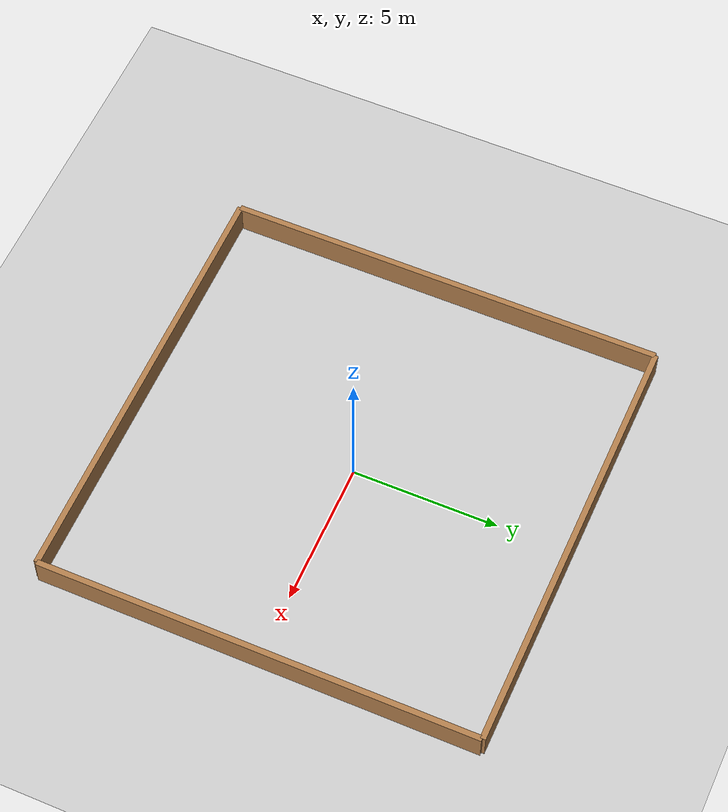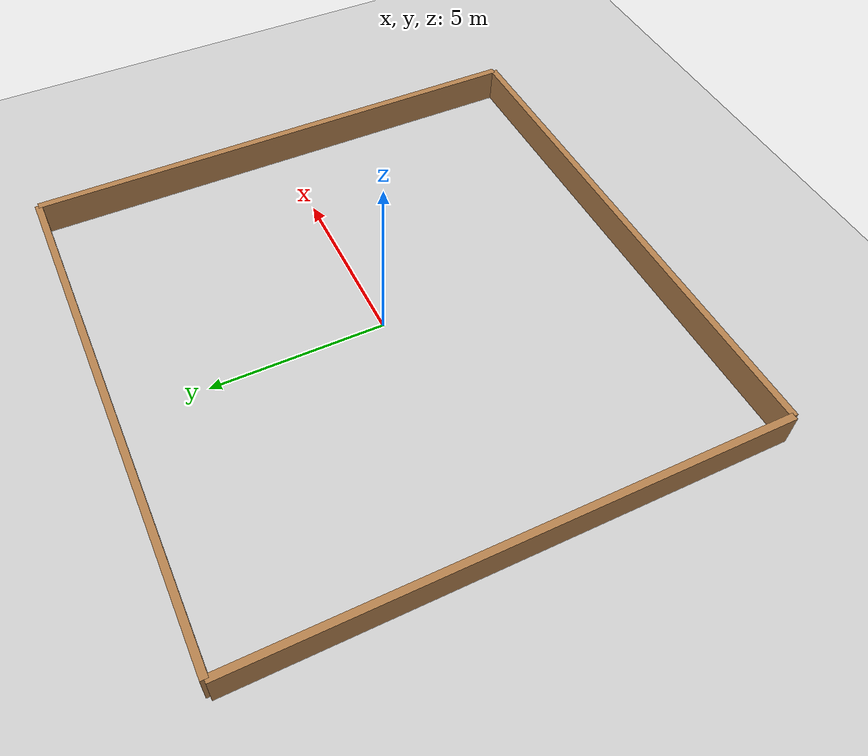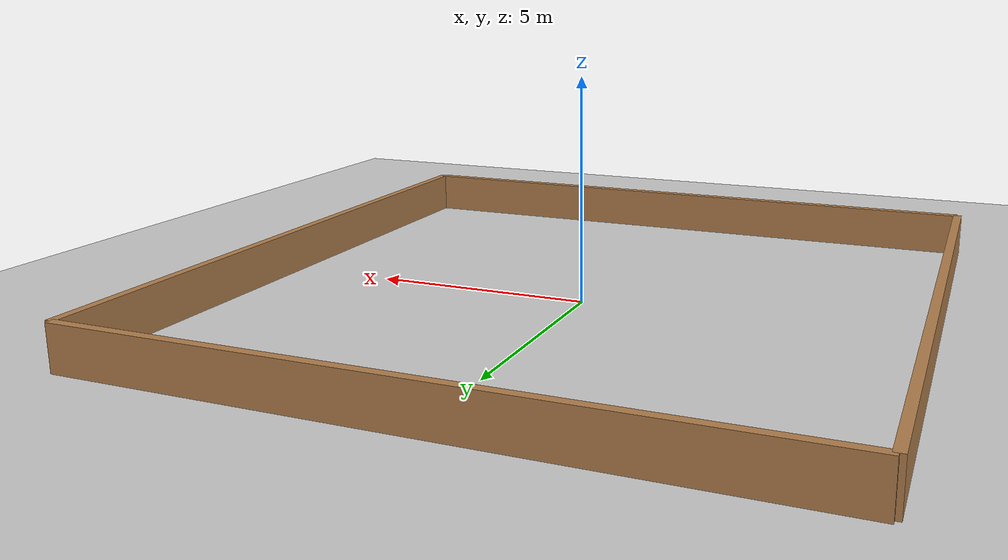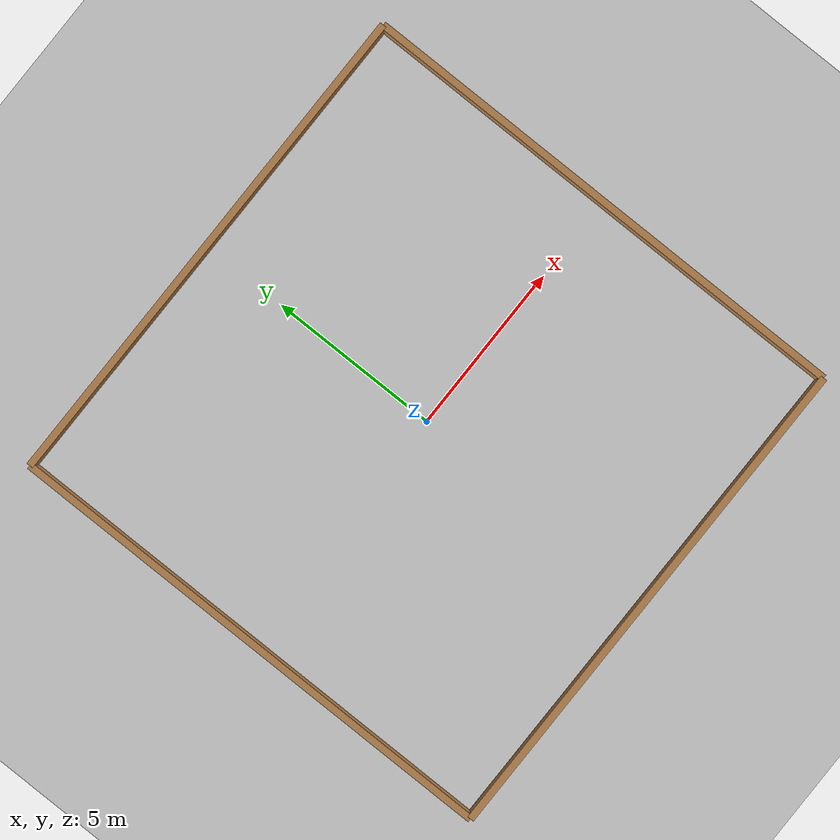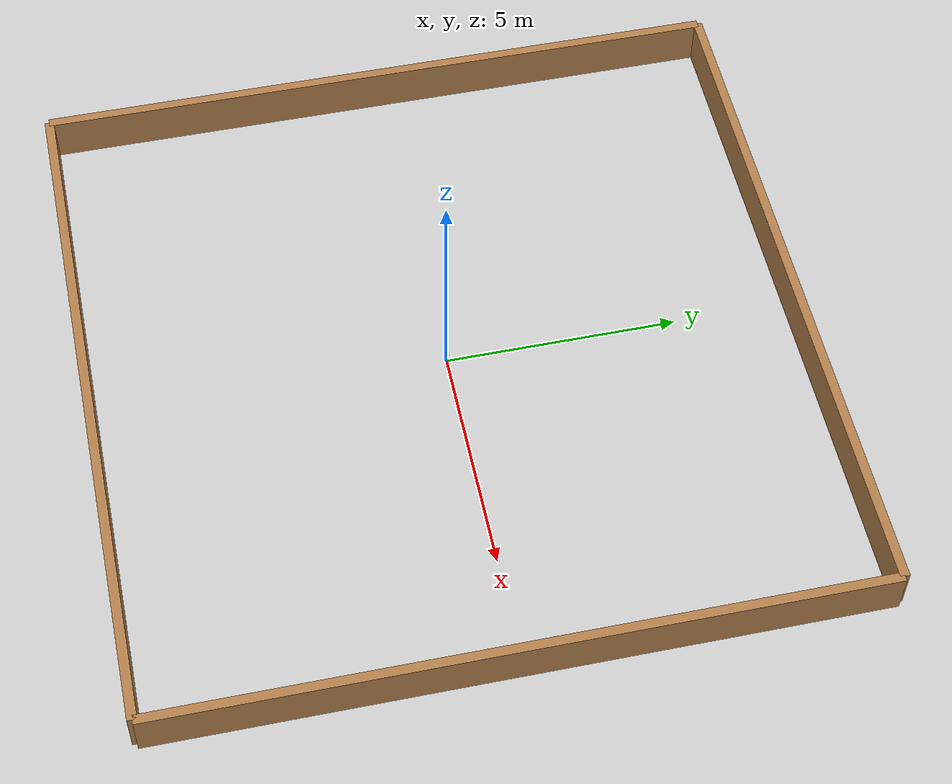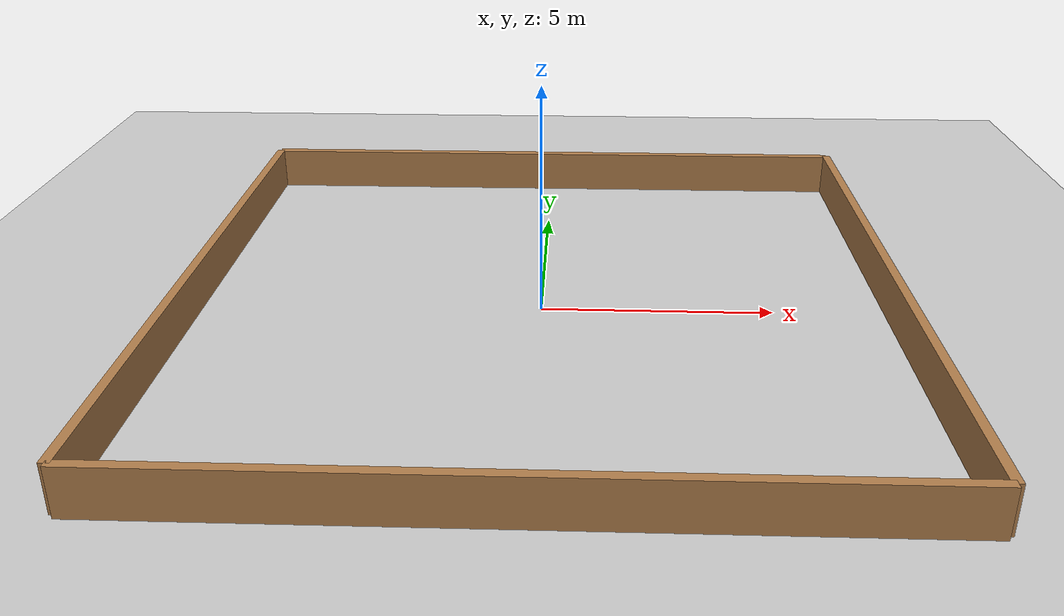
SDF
<?xml version="1.0" ?>
<sdf version="1.6">
  <world name="open_world">

    <!-- Physics -->
    <physics type="ode">
      <real_time_update_rate>1000.0</real_time_update_rate>
      <max_step_size>0.001</max_step_size>
      <real_time_factor>1</real_time_factor>
    </physics>

    <!-- Lighting -->
    <include>
      <uri>model://sun</uri>
    </include>

    <!-- Large ground plane -->
    <model name="ground_plane">
      <static>true</static>
      <link name="link">
        <collision name="collision">
          <geometry>
            <plane>
              <normal>0 0 1</normal>
              <size>30 30</size>
            </plane>
          </geometry>
        </collision>
        <visual name="visual">
          <geometry>
            <plane>
              <normal>0 0 1</normal>
              <size>30 30</size>
            </plane>
          </geometry>
          <material>
            <script>
              <uri>file://media/materials/scripts/gazebo.material</uri>
              <name>Gazebo/Grey</name>
            </script>
          </material>
        </visual>
      </link>
    </model>

    <!-- Boundary walls (invisible fence so robot doesn't fall off) -->
    <!-- North wall -->
    <model name="wall_north">
      <static>true</static>
      <pose>0 7.5 0.5 0 0 0</pose>
      <link name="link">
        <collision name="col"><geometry><box><size>15 0.2 1</size></box></geometry></collision>
        <visual name="vis">
          <geometry><box><size>15 0.2 1</size></box></geometry>
          <material><script><uri>file://media/materials/scripts/gazebo.material</uri><name>Gazebo/Wood</name></script></material>
        </visual>
      </link>
    </model>
    <!-- South wall -->
    <model name="wall_south">
      <static>true</static>
      <pose>0 -7.5 0.5 0 0 0</pose>
      <link name="link">
        <collision name="col"><geometry><box><size>15 0.2 1</size></box></geometry></collision>
        <visual name="vis">
          <geometry><box><size>15 0.2 1</size></box></geometry>
          <material><script><uri>file://media/materials/scripts/gazebo.material</uri><name>Gazebo/Wood</name></script></material>
        </visual>
      </link>
    </model>
    <!-- East wall -->
    <model name="wall_east">
      <static>true</static>
      <pose>7.5 0 0.5 0 0 0</pose>
      <link name="link">
        <collision name="col"><geometry><box><size>0.2 15 1</size></box></geometry></collision>
        <visual name="vis">
          <geometry><box><size>0.2 15 1</size></box></geometry>
          <material><script><uri>file://media/materials/scripts/gazebo.material</uri><name>Gazebo/Wood</name></script></material>
        </visual>
      </link>
    </model>
    <!-- West wall -->
    <model name="wall_west">
      <static>true</static>
      <pose>-7.5 0 0.5 0 0 0</pose>
      <link name="link">
        <collision name="col"><geometry><box><size>0.2 15 1</size></box></geometry></collision>
        <visual name="vis">
          <geometry><box><size>0.2 15 1</size></box></geometry>
          <material><script><uri>file://media/materials/scripts/gazebo.material</uri><name>Gazebo/Wood</name></script></material>
        </visual>
      </link>
    </model>

  </world>
</sdf>
